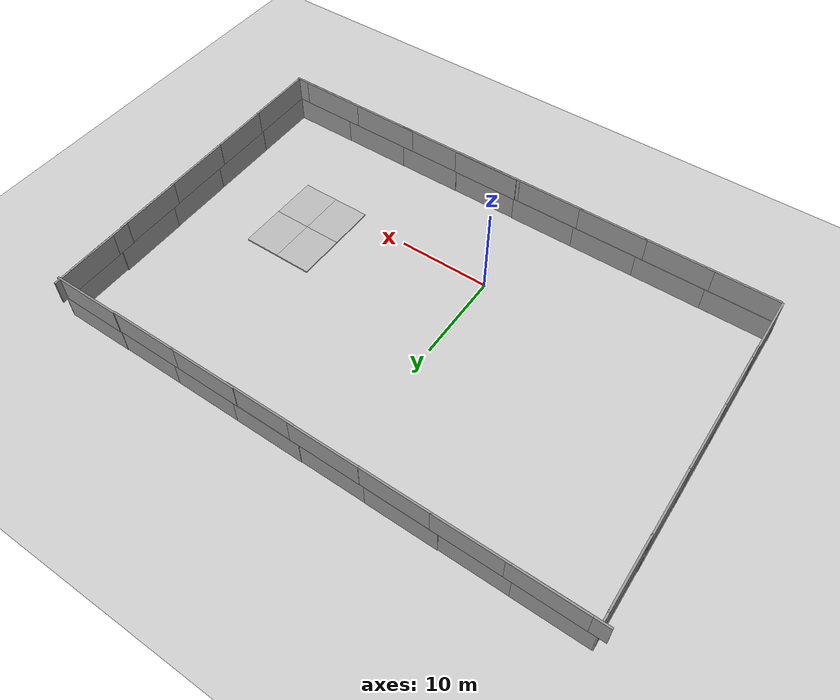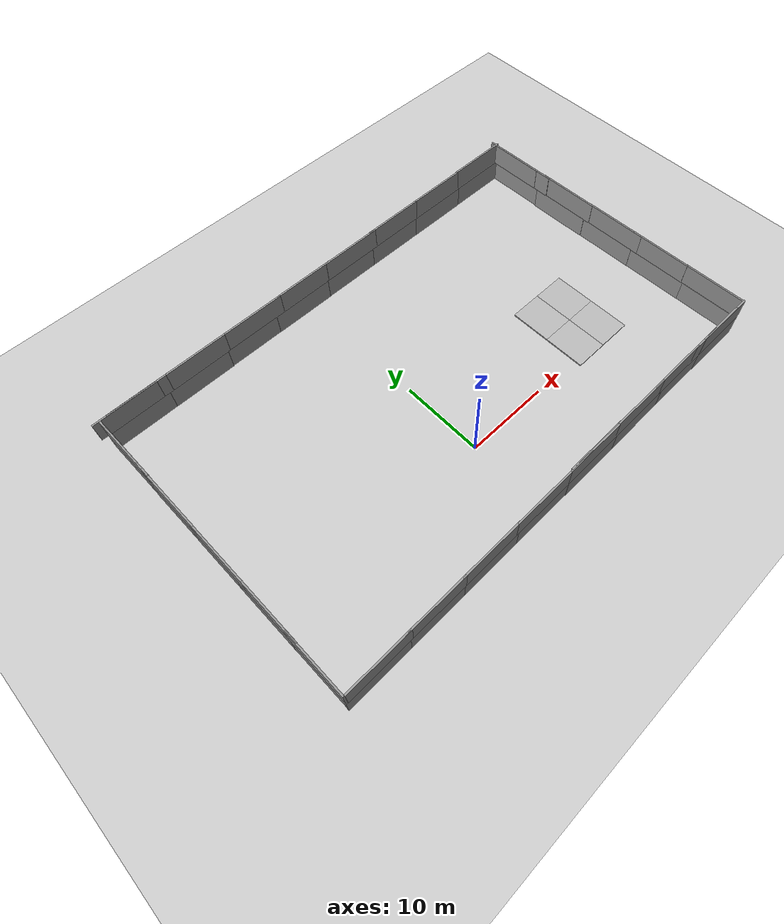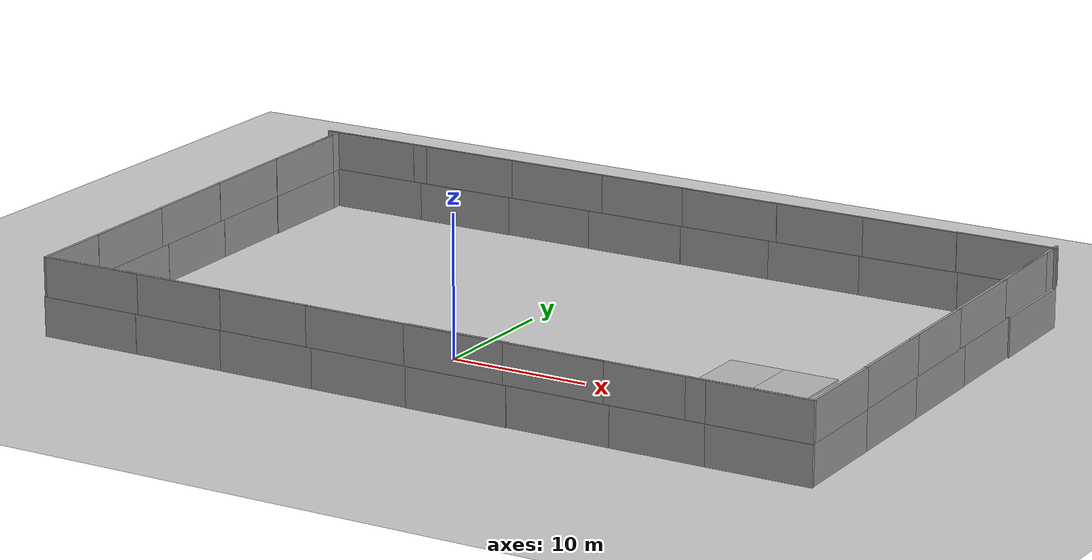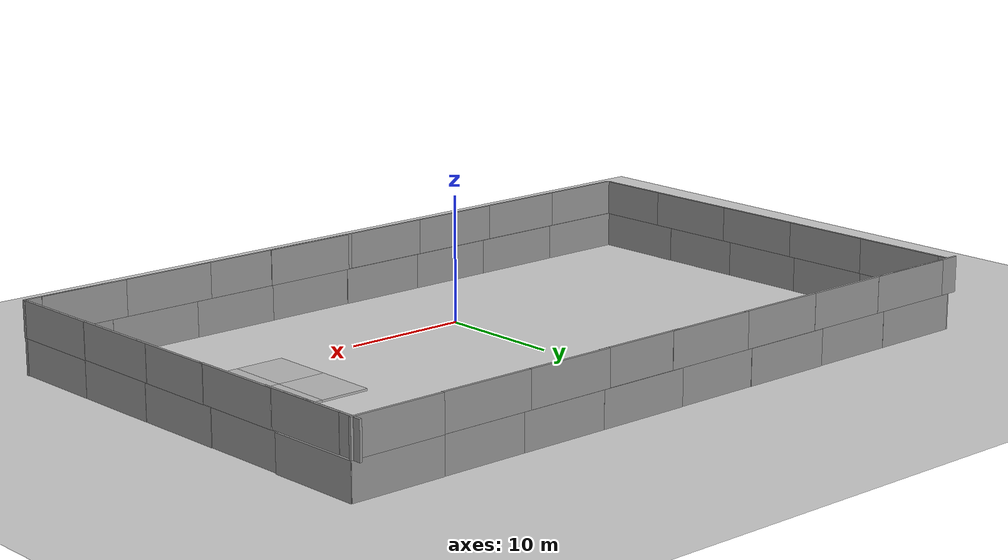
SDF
<sdf version="1.6">
 <world name="default">
  <light name="sun" type="directional">
   <pose>0 0 10 0 -0 0</pose>
   <diffuse>0.8 0.8 0.8 1</diffuse>
   <specular>0.2 0.2 0.2 1</specular>
   <attenuation>
    <range>1000</range>
    <constant>0.9</constant>
    <linear>0.01</linear>
    <quadratic>0.001</quadratic>
   </attenuation>
   <direction>-0.5 0.1 -0.9</direction>
  </light>
  <model name="ground_plane">
   <static>1</static>
   <link name="link">
    <collision name="collision">
     <geometry><plane><normal>0 0 1</normal><size>100 100</size></plane></geometry>
     <surface>
      <contact><collide_bitmask>65535</collide_bitmask></contact>
      <friction><ode><mu>100</mu><mu2>50</mu2></ode></friction>
     </surface>
    </collision>
    <visual name="visual">
     <cast_shadows>0</cast_shadows>
     <geometry><plane><normal>0 0 1</normal><size>100 100</size></plane></geometry>
     <material>
      <script><uri>file://media/materials/scripts/gazebo.material</uri><name>Gazebo/Grey</name></script>
     </material>
    </visual>
   </link>
  </model>
  <gravity>0 0 -9.8</gravity>
  <magnetic_field>6e-06 2.3e-05 -4.2e-05</magnetic_field>
  <atmosphere type="adiabatic"/>
  <physics name="default_physics" default="0" type="ode">
   <max_step_size>0.001</max_step_size>
   <real_time_factor>1</real_time_factor>
   <real_time_update_rate>1000</real_time_update_rate>
  </physics>
  <scene><ambient>0.4 0.4 0.4 1</ambient><background>0.7 0.7 0.7 1</background><shadows>1</shadows></scene>
  <audio><device>default</device></audio>
  <spherical_coordinates>
   <surface_model>EARTH_WGS84</surface_model>
   <latitude_deg>0</latitude_deg>
   <longitude_deg>0</longitude_deg>
   <elevation>0</elevation>
   <heading_deg>0</heading_deg>
  </spherical_coordinates>
  <model name="grey_wall">
   <static>1</static>
   <link name="link">
    <pose>0 0 1.4 0 -0 0</pose>
    <collision name="collision"><geometry><box><size>7.5 0.2 2.8</size></box></geometry></collision>
    <visual name="visual">
     <cast_shadows>0</cast_shadows>
     <geometry><box><size>7.5 0.2 2.8</size></box></geometry>
     <material>
      <script>
       <uri>model://grey_wall/materials/scripts</uri>
       <uri>model://grey_wall/materials/textures</uri>
       <name>vrc/grey_wall</name>
      </script>
     </material>
    </visual>
   </link>
   <pose>6.33138 -9.94059 0 0 -0 0</pose>
  </model>
  <model name="grey_wall_clone">
   <static>1</static>
   <link name="link">
    <pose>0 0 1.4 0 -0 0</pose>
    <collision name="collision"><geometry><box><size>7.5 0.2 2.8</size></box></geometry></collision>
    <visual name="visual">
     <cast_shadows>0</cast_shadows>
     <geometry><box><size>7.5 0.2 2.8</size></box></geometry>
     <material>
      <script>
       <uri>model://grey_wall/materials/scripts</uri>
       <uri>model://grey_wall/materials/textures</uri>
       <name>vrc/grey_wall</name>
      </script>
     </material>
    </visual>
   </link>
   <pose>-0.930477 -9.89295 0 0 -0 0</pose>
  </model>
  <model name="grey_wall_clone_0">
   <static>1</static>
   <link name="link">
    <pose>0 0 1.4 0 -0 0</pose>
    <collision name="collision"><geometry><box><size>7.5 0.2 2.8</size></box></geometry></collision>
    <visual name="visual">
     <cast_shadows>0</cast_shadows>
     <geometry><box><size>7.5 0.2 2.8</size></box></geometry>
     <material>
      <script>
       <uri>model://grey_wall/materials/scripts</uri>
       <uri>model://grey_wall/materials/textures</uri>
       <name>vrc/grey_wall</name>
      </script>
     </material>
    </visual>
   </link>
   <pose>-8.11293 -9.88561 0 0 -0 0</pose>
  </model>
  <model name="grey_wall_clone_1">
   <static>1</static>
   <link name="link">
    <pose>0 0 1.4 0 -0 0</pose>
    <collision name="collision"><geometry><box><size>7.5 0.2 2.8</size></box></geometry></collision>
    <visual name="visual">
     <cast_shadows>0</cast_shadows>
     <geometry><box><size>7.5 0.2 2.8</size></box></geometry>
     <material>
      <script>
       <uri>model://grey_wall/materials/scripts</uri>
       <uri>model://grey_wall/materials/textures</uri>
       <name>vrc/grey_wall</name>
      </script>
     </material>
    </visual>
   </link>
   <pose>-15.1967 -9.87373 0 0 -0 0</pose>
  </model>
  <model name="grey_wall_clone_2">
   <static>1</static>
   <link name="link">
    <pose>0 0 1.4 0 -0 0</pose>
    <collision name="collision"><geometry><box><size>7.5 0.2 2.8</size></box></geometry></collision>
    <visual name="visual">
     <cast_shadows>0</cast_shadows>
     <geometry><box><size>7.5 0.2 2.8</size></box></geometry>
     <material>
      <script>
       <uri>model://grey_wall/materials/scripts</uri>
       <uri>model://grey_wall/materials/textures</uri>
       <name>vrc/grey_wall</name>
      </script>
     </material>
    </visual>
   </link>
   <pose>-22.4069 -9.88614 0 0 -0 0</pose>
  </model>
  <model name="grey_wall_clone_2_clone">
   <static>1</static>
   <link name="link">
    <pose>0 0 1.4 0 -0 0</pose>
    <collision name="collision"><geometry><box><size>7.5 0.2 2.8</size></box></geometry></collision>
    <visual name="visual">
     <cast_shadows>0</cast_shadows>
     <geometry><box><size>7.5 0.2 2.8</size></box></geometry>
     <material>
      <script>
       <uri>model://grey_wall/materials/scripts</uri>
       <uri>model://grey_wall/materials/textures</uri>
       <name>vrc/grey_wall</name>
      </script>
     </material>
    </visual>
   </link>
   <pose>-26.088 -6.17554 0 0 -0 1.58718</pose>
  </model>
  <model name="grey_wall_clone_2_clone_clone">
   <static>1</static>
   <link name="link">
    <pose>0 0 1.4 0 -0 0</pose>
    <collision name="collision"><geometry><box><size>7.5 0.2 2.8</size></box></geometry></collision>
    <visual name="visual">
     <cast_shadows>0</cast_shadows>
     <geometry><box><size>7.5 0.2 2.8</size></box></geometry>
     <material>
      <script>
       <uri>model://grey_wall/materials/scripts</uri>
       <uri>model://grey_wall/materials/textures</uri>
       <name>vrc/grey_wall</name>
      </script>
     </material>
    </visual>
   </link>
   <pose>-26.2186 0.980149 0 0 -0 1.58718</pose>
  </model>
  <model name="grey_wall_clone_2_clone_clone_0">
   <static>1</static>
   <link name="link">
    <pose>0 0 1.4 0 -0 0</pose>
    <collision name="collision"><geometry><box><size>7.5 0.2 2.8</size></box></geometry></collision>
    <visual name="visual">
     <cast_shadows>0</cast_shadows>
     <geometry><box><size>7.5 0.2 2.8</size></box></geometry>
     <material>
      <script>
       <uri>model://grey_wall/materials/scripts</uri>
       <uri>model://grey_wall/materials/textures</uri>
       <name>vrc/grey_wall</name>
      </script>
     </material>
    </visual>
   </link>
   <pose>-26.3301 8.00722 0 0 -0 1.58718</pose>
  </model>
  <model name="grey_wall_clone_2_clone_clone_1">
   <static>1</static>
   <link name="link">
    <pose>0 0 1.4 0 -0 0</pose>
    <collision name="collision"><geometry><box><size>7.5 0.2 2.8</size></box></geometry></collision>
    <visual name="visual">
     <cast_shadows>0</cast_shadows>
     <geometry><box><size>7.5 0.2 2.8</size></box></geometry>
     <material>
      <script>
       <uri>model://grey_wall/materials/scripts</uri>
       <uri>model://grey_wall/materials/textures</uri>
       <name>vrc/grey_wall</name>
      </script>
     </material>
    </visual>
   </link>
   <pose>-26.4327 14.9335 0 0 -0 1.58718</pose>
  </model>
  <model name="grey_wall_clone_2_clone_clone_2">
   <static>1</static>
   <link name="link">
    <pose>0 0 1.4 0 -0 0</pose>
    <collision name="collision"><geometry><box><size>7.5 0.2 2.8</size></box></geometry></collision>
    <visual name="visual">
     <cast_shadows>0</cast_shadows>
     <geometry><box><size>7.5 0.2 2.8</size></box></geometry>
     <material>
      <script>
       <uri>model://grey_wall/materials/scripts</uri>
       <uri>model://grey_wall/materials/textures</uri>
       <name>vrc/grey_wall</name>
      </script>
     </material>
    </visual>
   </link>
   <pose>-26.4972 21.7148 0 0 -0 1.58718</pose>
  </model>
  <model name="grey_wall_clone_2_clone_clone_2_clone">
   <static>1</static>
   <link name="link">
    <pose>0 0 1.4 0 -0 0</pose>
    <collision name="collision"><geometry><box><size>7.5 0.2 2.8</size></box></geometry></collision>
    <visual name="visual">
     <cast_shadows>0</cast_shadows>
     <geometry><box><size>7.5 0.2 2.8</size></box></geometry>
     <material>
      <script>
       <uri>model://grey_wall/materials/scripts</uri>
       <uri>model://grey_wall/materials/textures</uri>
       <name>vrc/grey_wall</name>
      </script>
     </material>
    </visual>
   </link>
   <pose>-26.4889 21.6711 2.77944 0 -0 1.58718</pose>
  </model>
  <model name="grey_wall_clone_2_clone_clone_2_clone_clone">
   <static>1</static>
   <link name="link">
    <pose>0 0 1.4 0 -0 0</pose>
    <collision name="collision"><geometry><box><size>7.5 0.2 2.8</size></box></geometry></collision>
    <visual name="visual">
     <cast_shadows>0</cast_shadows>
     <geometry><box><size>7.5 0.2 2.8</size></box></geometry>
     <material>
      <script>
       <uri>model://grey_wall/materials/scripts</uri>
       <uri>model://grey_wall/materials/textures</uri>
       <name>vrc/grey_wall</name>
      </script>
     </material>
    </visual>
   </link>
   <pose>-26.3963 14.4366 2.77944 0 -0 1.58718</pose>
  </model>
  <model name="grey_wall_clone_2_clone_clone_2_clone_clone_0">
   <static>1</static>
   <link name="link">
    <pose>0 0 1.4 0 -0 0</pose>
    <collision name="collision"><geometry><box><size>7.5 0.2 2.8</size></box></geometry></collision>
    <visual name="visual">
     <cast_shadows>0</cast_shadows>
     <geometry><box><size>7.5 0.2 2.8</size></box></geometry>
     <material>
      <script>
       <uri>model://grey_wall/materials/scripts</uri>
       <uri>model://grey_wall/materials/textures</uri>
       <name>vrc/grey_wall</name>
      </script>
     </material>
    </visual>
   </link>
   <pose>-26.2916 7.22216 2.77944 0 -0 1.58718</pose>
  </model>
  <model name="grey_wall_clone_2_clone_clone_2_clone_clone_1">
   <static>1</static>
   <link name="link">
    <pose>0 0 1.4 0 -0 0</pose>
    <collision name="collision"><geometry><box><size>7.5 0.2 2.8</size></box></geometry></collision>
    <visual name="visual">
     <cast_shadows>0</cast_shadows>
     <geometry><box><size>7.5 0.2 2.8</size></box></geometry>
     <material>
      <script>
       <uri>model://grey_wall/materials/scripts</uri>
       <uri>model://grey_wall/materials/textures</uri>
       <name>vrc/grey_wall</name>
      </script>
     </material>
    </visual>
   </link>
   <pose>-26.165 -0.241195 2.77944 0 -0 1.58718</pose>
  </model>
  <model name="grey_wall_clone_2_clone_clone_2_clone_clone_2">
   <static>1</static>
   <link name="link">
    <pose>0 0 1.4 0 -0 0</pose>
    <collision name="collision"><geometry><box><size>7.5 0.2 2.8</size></box></geometry></collision>
    <visual name="visual">
     <cast_shadows>0</cast_shadows>
     <geometry><box><size>7.5 0.2 2.8</size></box></geometry>
     <material>
      <script>
       <uri>model://grey_wall/materials/scripts</uri>
       <uri>model://grey_wall/materials/textures</uri>
       <name>vrc/grey_wall</name>
      </script>
     </material>
    </visual>
   </link>
   <pose>-26.0871 -6.20339 2.77944 0 -0 1.58718</pose>
  </model>
  <model name="grey_wall_clone_3">
   <static>1</static>
   <link name="link">
    <pose>0 0 1.4 0 -0 0</pose>
    <collision name="collision"><geometry><box><size>7.5 0.2 2.8</size></box></geometry></collision>
    <visual name="visual">
     <cast_shadows>0</cast_shadows>
     <geometry><box><size>7.5 0.2 2.8</size></box></geometry>
     <material>
      <script>
       <uri>model://grey_wall/materials/scripts</uri>
       <uri>model://grey_wall/materials/textures</uri>
       <name>vrc/grey_wall</name>
      </script>
     </material>
    </visual>
   </link>
   <pose>-22.1691 -9.92634 2.81311 0 -0 0</pose>
  </model>
  <model name="grey_wall_clone_3_clone">
   <static>1</static>
   <link name="link">
    <pose>0 0 1.4 0 -0 0</pose>
    <collision name="collision"><geometry><box><size>7.5 0.2 2.8</size></box></geometry></collision>
    <visual name="visual">
     <cast_shadows>0</cast_shadows>
     <geometry><box><size>7.5 0.2 2.8</size></box></geometry>
     <material>
      <script>
       <uri>model://grey_wall/materials/scripts</uri>
       <uri>model://grey_wall/materials/textures</uri>
       <name>vrc/grey_wall</name>
      </script>
     </material>
    </visual>
   </link>
   <pose>-15.5243 -9.92187 2.81311 0 -0 0</pose>
  </model>
  <model name="grey_wall_clone_3_clone_0">
   <static>1</static>
   <link name="link">
    <pose>0 0 1.4 0 -0 0</pose>
    <collision name="collision"><geometry><box><size>7.5 0.2 2.8</size></box></geometry></collision>
    <visual name="visual">
     <cast_shadows>0</cast_shadows>
     <geometry><box><size>7.5 0.2 2.8</size></box></geometry>
     <material>
      <script>
       <uri>model://grey_wall/materials/scripts</uri>
       <uri>model://grey_wall/materials/textures</uri>
       <name>vrc/grey_wall</name>
      </script>
     </material>
    </visual>
   </link>
   <pose>-8.42803 -9.91453 2.81311 0 -0 0</pose>
  </model>
  <model name="grey_wall_clone_3_clone_1">
   <static>1</static>
   <link name="link">
    <pose>0 0 1.4 0 -0 0</pose>
    <collision name="collision"><geometry><box><size>7.5 0.2 2.8</size></box></geometry></collision>
    <visual name="visual">
     <cast_shadows>0</cast_shadows>
     <geometry><box><size>7.5 0.2 2.8</size></box></geometry>
     <material>
      <script>
       <uri>model://grey_wall/materials/scripts</uri>
       <uri>model://grey_wall/materials/textures</uri>
       <name>vrc/grey_wall</name>
      </script>
     </material>
    </visual>
   </link>
   <pose>-1.28364 -9.93151 2.81311 0 -0 0</pose>
  </model>
  <model name="grey_wall_clone_3_clone_1_clone">
   <static>1</static>
   <link name="link">
    <pose>0 0 1.4 0 -0 0</pose>
    <collision name="collision"><geometry><box><size>7.5 0.2 2.8</size></box></geometry></collision>
    <visual name="visual">
     <cast_shadows>0</cast_shadows>
     <geometry><box><size>7.5 0.2 2.8</size></box></geometry>
     <material>
      <script>
       <uri>model://grey_wall/materials/scripts</uri>
       <uri>model://grey_wall/materials/textures</uri>
       <name>vrc/grey_wall</name>
      </script>
     </material>
    </visual>
   </link>
   <pose>6.08354 -9.92656 2.81311 0 -0 0</pose>
  </model>
  <model name="grey_wall_clone_3_clone_1_clone_0">
   <static>1</static>
   <link name="link">
    <pose>0 0 1.4 0 -0 0</pose>
    <collision name="collision"><geometry><box><size>7.5 0.2 2.8</size></box></geometry></collision>
    <visual name="visual">
     <cast_shadows>0</cast_shadows>
     <geometry><box><size>7.5 0.2 2.8</size></box></geometry>
     <material>
      <script>
       <uri>model://grey_wall/materials/scripts</uri>
       <uri>model://grey_wall/materials/textures</uri>
       <name>vrc/grey_wall</name>
      </script>
     </material>
    </visual>
   </link>
   <pose>6.45462 -9.84681 2.81311 0 -0 0</pose>
  </model>
  <model name="grey_wall_clone_4">
   <static>1</static>
   <link name="link">
    <pose>0 0 1.4 0 -0 0</pose>
    <collision name="collision"><geometry><box><size>7.5 0.2 2.8</size></box></geometry></collision>
    <visual name="visual">
     <cast_shadows>0</cast_shadows>
     <geometry><box><size>7.5 0.2 2.8</size></box></geometry>
     <material>
      <script>
       <uri>model://grey_wall/materials/scripts</uri>
       <uri>model://grey_wall/materials/textures</uri>
       <name>vrc/grey_wall</name>
      </script>
     </material>
    </visual>
   </link>
   <pose>13.8435 -9.91842 0 0 -0 0</pose>
  </model>
  <model name="grey_wall_clone_5">
   <static>1</static>
   <link name="link">
    <pose>0 0 1.4 0 -0 0</pose>
    <collision name="collision"><geometry><box><size>7.5 0.2 2.8</size></box></geometry></collision>
    <visual name="visual">
     <cast_shadows>0</cast_shadows>
     <geometry><box><size>7.5 0.2 2.8</size></box></geometry>
     <material>
      <script>
       <uri>model://grey_wall/materials/scripts</uri>
       <uri>model://grey_wall/materials/textures</uri>
       <name>vrc/grey_wall</name>
      </script>
     </material>
    </visual>
   </link>
   <pose>20.8684 -9.91738 0 0 -0 0</pose>
  </model>
  <model name="grey_wall_clone_6">
   <static>1</static>
   <link name="link">
    <pose>0 0 1.4 0 -0 0</pose>
    <collision name="collision"><geometry><box><size>7.5 0.2 2.8</size></box></geometry></collision>
    <visual name="visual">
     <cast_shadows>0</cast_shadows>
     <geometry><box><size>7.5 0.2 2.8</size></box></geometry>
     <material>
      <script>
       <uri>model://grey_wall/materials/scripts</uri>
       <uri>model://grey_wall/materials/textures</uri>
       <name>vrc/grey_wall</name>
      </script>
     </material>
    </visual>
   </link>
   <pose>28.1244 -9.92121 0 0 -0 0</pose>
  </model>
  <model name="grey_wall_clone_3_clone_1_clone_0_clone">
   <static>1</static>
   <link name="link">
    <pose>0 0 1.4 0 -0 0</pose>
    <collision name="collision"><geometry><box><size>7.5 0.2 2.8</size></box></geometry></collision>
    <visual name="visual">
     <cast_shadows>0</cast_shadows>
     <geometry><box><size>7.5 0.2 2.8</size></box></geometry>
     <material>
      <script>
       <uri>model://grey_wall/materials/scripts</uri>
       <uri>model://grey_wall/materials/textures</uri>
       <name>vrc/grey_wall</name>
      </script>
     </material>
    </visual>
   </link>
   <pose>13.4346 -9.89838 2.81311 0 -0 0</pose>
  </model>
  <model name="grey_wall_clone_3_clone_1_clone_0_clone_0">
   <static>1</static>
   <link name="link">
    <pose>0 0 1.4 0 -0 0</pose>
    <collision name="collision"><geometry><box><size>7.5 0.2 2.8</size></box></geometry></collision>
    <visual name="visual">
     <cast_shadows>0</cast_shadows>
     <geometry><box><size>7.5 0.2 2.8</size></box></geometry>
     <material>
      <script>
       <uri>model://grey_wall/materials/scripts</uri>
       <uri>model://grey_wall/materials/textures</uri>
       <name>vrc/grey_wall</name>
      </script>
     </material>
    </visual>
   </link>
   <pose>19.5935 -9.8919 2.81311 0 -0 0</pose>
  </model>
  <model name="grey_wall_clone_3_clone_1_clone_0_clone_1">
   <static>1</static>
   <link name="link">
    <pose>0 0 1.4 0 -0 0</pose>
    <collision name="collision"><geometry><box><size>7.5 0.2 2.8</size></box></geometry></collision>
    <visual name="visual">
     <cast_shadows>0</cast_shadows>
     <geometry><box><size>7.5 0.2 2.8</size></box></geometry>
     <material>
      <script>
       <uri>model://grey_wall/materials/scripts</uri>
       <uri>model://grey_wall/materials/textures</uri>
       <name>vrc/grey_wall</name>
      </script>
     </material>
    </visual>
   </link>
   <pose>26.7299 -9.89311 2.81311 0 -0 0</pose>
  </model>
  <model name="grey_wall_clone_3_clone_1_clone_0_clone_2">
   <static>1</static>
   <link name="link">
    <pose>0 0 1.4 0 -0 0</pose>
    <collision name="collision"><geometry><box><size>7.5 0.2 2.8</size></box></geometry></collision>
    <visual name="visual">
     <cast_shadows>0</cast_shadows>
     <geometry><box><size>7.5 0.2 2.8</size></box></geometry>
     <material>
      <script>
       <uri>model://grey_wall/materials/scripts</uri>
       <uri>model://grey_wall/materials/textures</uri>
       <name>vrc/grey_wall</name>
      </script>
     </material>
    </visual>
   </link>
   <pose>28.177 -9.92404 2.81311 0 -0 0</pose>
  </model>
  <model name="grey_wall_clone_2_clone_clone_2_clone_0">
   <static>1</static>
   <link name="link">
    <pose>0 0 1.4 0 -0 0</pose>
    <collision name="collision"><geometry><box><size>7.5 0.2 2.8</size></box></geometry></collision>
    <visual name="visual">
     <cast_shadows>0</cast_shadows>
     <geometry><box><size>7.5 0.2 2.8</size></box></geometry>
     <material>
      <script>
       <uri>model://grey_wall/materials/scripts</uri>
       <uri>model://grey_wall/materials/textures</uri>
       <name>vrc/grey_wall</name>
      </script>
     </material>
    </visual>
   </link>
   <pose>31.6783 -6.2246 0 0 -0 1.58718</pose>
  </model>
  <model name="grey_wall_clone_2_clone_clone_2_clone_1">
   <static>1</static>
   <link name="link">
    <pose>0 0 1.4 0 -0 0</pose>
    <collision name="collision"><geometry><box><size>7.5 0.2 2.8</size></box></geometry></collision>
    <visual name="visual">
     <cast_shadows>0</cast_shadows>
     <geometry><box><size>7.5 0.2 2.8</size></box></geometry>
     <material>
      <script>
       <uri>model://grey_wall/materials/scripts</uri>
       <uri>model://grey_wall/materials/textures</uri>
       <name>vrc/grey_wall</name>
      </script>
     </material>
    </visual>
   </link>
   <pose>31.5555 0.939964 0 0 -0 1.58718</pose>
  </model>
  <model name="grey_wall_clone_2_clone_clone_2_clone_2">
   <static>1</static>
   <link name="link">
    <pose>0 0 1.4 0 -0 0</pose>
    <collision name="collision"><geometry><box><size>7.5 0.2 2.8</size></box></geometry></collision>
    <visual name="visual">
     <cast_shadows>0</cast_shadows>
     <geometry><box><size>7.5 0.2 2.8</size></box></geometry>
     <material>
      <script>
       <uri>model://grey_wall/materials/scripts</uri>
       <uri>model://grey_wall/materials/textures</uri>
       <name>vrc/grey_wall</name>
      </script>
     </material>
    </visual>
   </link>
   <pose>31.4139 8.29098 0 0 -0 1.58718</pose>
  </model>
  <model name="grey_wall_clone_2_clone_clone_2_clone_3">
   <static>1</static>
   <link name="link">
    <pose>0 0 1.4 0 -0 0</pose>
    <collision name="collision"><geometry><box><size>7.5 0.2 2.8</size></box></geometry></collision>
    <visual name="visual">
     <cast_shadows>0</cast_shadows>
     <geometry><box><size>7.5 0.2 2.8</size></box></geometry>
     <material>
      <script>
       <uri>model://grey_wall/materials/scripts</uri>
       <uri>model://grey_wall/materials/textures</uri>
       <name>vrc/grey_wall</name>
      </script>
     </material>
    </visual>
   </link>
   <pose>31.2528 15.4557 0 0 -0 1.58718</pose>
  </model>
  <model name="grey_wall_clone_2_clone_clone_2_clone_4">
   <static>1</static>
   <link name="link">
    <pose>0 0 1.4 0 -0 0</pose>
    <collision name="collision"><geometry><box><size>7.5 0.2 2.8</size></box></geometry></collision>
    <visual name="visual">
     <cast_shadows>0</cast_shadows>
     <geometry><box><size>7.5 0.2 2.8</size></box></geometry>
     <material>
      <script>
       <uri>model://grey_wall/materials/scripts</uri>
       <uri>model://grey_wall/materials/textures</uri>
       <name>vrc/grey_wall</name>
      </script>
     </material>
    </visual>
   </link>
   <pose>31.2519 22.7221 0 0 -0 1.58718</pose>
  </model>
  <model name="grey_wall_clone_6_clone">
   <static>1</static>
   <link name="link">
    <pose>0 0 1.4 0 -0 0</pose>
    <collision name="collision"><geometry><box><size>7.5 0.2 2.8</size></box></geometry></collision>
    <visual name="visual">
     <cast_shadows>0</cast_shadows>
     <geometry><box><size>7.5 0.2 2.8</size></box></geometry>
     <material>
      <script>
       <uri>model://grey_wall/materials/scripts</uri>
       <uri>model://grey_wall/materials/textures</uri>
       <name>vrc/grey_wall</name>
      </script>
     </material>
    </visual>
   </link>
   <pose>27.4831 26.3853 0 0 -0 0</pose>
  </model>
  <model name="grey_wall_clone_6_clone_0">
   <static>1</static>
   <link name="link">
    <pose>0 0 1.4 0 -0 0</pose>
    <collision name="collision"><geometry><box><size>7.5 0.2 2.8</size></box></geometry></collision>
    <visual name="visual">
     <cast_shadows>0</cast_shadows>
     <geometry><box><size>7.5 0.2 2.8</size></box></geometry>
     <material>
      <script>
       <uri>model://grey_wall/materials/scripts</uri>
       <uri>model://grey_wall/materials/textures</uri>
       <name>vrc/grey_wall</name>
      </script>
     </material>
    </visual>
   </link>
   <pose>20.2882 26.352 0 0 -0 0</pose>
  </model>
  <model name="grey_wall_clone_6_clone_1">
   <static>1</static>
   <link name="link">
    <pose>0 0 1.4 0 -0 0</pose>
    <collision name="collision"><geometry><box><size>7.5 0.2 2.8</size></box></geometry></collision>
    <visual name="visual">
     <cast_shadows>0</cast_shadows>
     <geometry><box><size>7.5 0.2 2.8</size></box></geometry>
     <material>
      <script>
       <uri>model://grey_wall/materials/scripts</uri>
       <uri>model://grey_wall/materials/textures</uri>
       <name>vrc/grey_wall</name>
      </script>
     </material>
    </visual>
   </link>
   <pose>13.177 26.3611 0 0 -0 0</pose>
  </model>
  <model name="grey_wall_clone_6_clone_2">
   <static>1</static>
   <link name="link">
    <pose>0 0 1.4 0 -0 0</pose>
    <collision name="collision"><geometry><box><size>7.5 0.2 2.8</size></box></geometry></collision>
    <visual name="visual">
     <cast_shadows>0</cast_shadows>
     <geometry><box><size>7.5 0.2 2.8</size></box></geometry>
     <material>
      <script>
       <uri>model://grey_wall/materials/scripts</uri>
       <uri>model://grey_wall/materials/textures</uri>
       <name>vrc/grey_wall</name>
      </script>
     </material>
    </visual>
   </link>
   <pose>6.00972 26.3633 0 0 -0 0</pose>
  </model>
  <model name="grey_wall_clone_6_clone_3">
   <static>1</static>
   <link name="link">
    <pose>0 0 1.4 0 -0 0</pose>
    <collision name="collision"><geometry><box><size>7.5 0.2 2.8</size></box></geometry></collision>
    <visual name="visual">
     <cast_shadows>0</cast_shadows>
     <geometry><box><size>7.5 0.2 2.8</size></box></geometry>
     <material>
      <script>
       <uri>model://grey_wall/materials/scripts</uri>
       <uri>model://grey_wall/materials/textures</uri>
       <name>vrc/grey_wall</name>
      </script>
     </material>
    </visual>
   </link>
   <pose>-1.35612 26.3275 0 0 -0 0</pose>
  </model>
  <model name="grey_wall_clone_6_clone_4">
   <static>1</static>
   <link name="link">
    <pose>0 0 1.4 0 -0 0</pose>
    <collision name="collision"><geometry><box><size>7.5 0.2 2.8</size></box></geometry></collision>
    <visual name="visual">
     <cast_shadows>0</cast_shadows>
     <geometry><box><size>7.5 0.2 2.8</size></box></geometry>
     <material>
      <script>
       <uri>model://grey_wall/materials/scripts</uri>
       <uri>model://grey_wall/materials/textures</uri>
       <name>vrc/grey_wall</name>
      </script>
     </material>
    </visual>
   </link>
   <pose>-8.43359 26.3507 0 0 -0 0</pose>
  </model>
  <model name="grey_wall_clone_6_clone_5">
   <static>1</static>
   <link name="link">
    <pose>0 0 1.4 0 -0 0</pose>
    <collision name="collision"><geometry><box><size>7.5 0.2 2.8</size></box></geometry></collision>
    <visual name="visual">
     <cast_shadows>0</cast_shadows>
     <geometry><box><size>7.5 0.2 2.8</size></box></geometry>
     <material>
      <script>
       <uri>model://grey_wall/materials/scripts</uri>
       <uri>model://grey_wall/materials/textures</uri>
       <name>vrc/grey_wall</name>
      </script>
     </material>
    </visual>
   </link>
   <pose>-15.5457 26.3003 0 0 -0 0</pose>
  </model>
  <model name="grey_wall_clone_6_clone_6">
   <static>1</static>
   <link name="link">
    <pose>0 0 1.4 0 -0 0</pose>
    <collision name="collision"><geometry><box><size>7.5 0.2 2.8</size></box></geometry></collision>
    <visual name="visual">
     <cast_shadows>0</cast_shadows>
     <geometry><box><size>7.5 0.2 2.8</size></box></geometry>
     <material>
      <script>
       <uri>model://grey_wall/materials/scripts</uri>
       <uri>model://grey_wall/materials/textures</uri>
       <name>vrc/grey_wall</name>
      </script>
     </material>
    </visual>
   </link>
   <pose>-22.8245 26.3093 0 0 -0 0</pose>
  </model>
  <model name="grey_wall_clone_2_clone_clone_2_clone_5">
   <static>1</static>
   <link name="link">
    <pose>0 0 1.4 0 -0 0</pose>
    <collision name="collision"><geometry><box><size>7.5 0.2 2.8</size></box></geometry></collision>
    <visual name="visual">
     <cast_shadows>0</cast_shadows>
     <geometry><box><size>7.5 0.2 2.8</size></box></geometry>
     <material>
      <script>
       <uri>model://grey_wall/materials/scripts</uri>
       <uri>model://grey_wall/materials/textures</uri>
       <name>vrc/grey_wall</name>
      </script>
     </material>
    </visual>
   </link>
   <pose>-26.5325 22.641 0 0 -0 1.58718</pose>
  </model>
  <model name="grey_wall_clone_2_clone_clone_2_clone_clone_3">
   <static>1</static>
   <link name="link">
    <pose>0 0 1.4 0 -0 0</pose>
    <collision name="collision"><geometry><box><size>7.5 0.2 2.8</size></box></geometry></collision>
    <visual name="visual">
     <cast_shadows>0</cast_shadows>
     <geometry><box><size>7.5 0.2 2.8</size></box></geometry>
     <material>
      <script>
       <uri>model://grey_wall/materials/scripts</uri>
       <uri>model://grey_wall/materials/textures</uri>
       <name>vrc/grey_wall</name>
      </script>
     </material>
    </visual>
   </link>
   <pose>-26.5163 22.6718 2.77944 0 -0 1.58718</pose>
  </model>
  <model name="grey_wall_clone_3_clone_1_clone_0_clone_2_clone">
   <static>1</static>
   <link name="link">
    <pose>0 0 1.4 0 -0 0</pose>
    <collision name="collision"><geometry><box><size>7.5 0.2 2.8</size></box></geometry></collision>
    <visual name="visual">
     <cast_shadows>0</cast_shadows>
     <geometry><box><size>7.5 0.2 2.8</size></box></geometry>
     <material>
      <script>
       <uri>model://grey_wall/materials/scripts</uri>
       <uri>model://grey_wall/materials/textures</uri>
       <name>vrc/grey_wall</name>
      </script>
     </material>
    </visual>
   </link>
   <pose>27.5408 26.4442 2.81311 0 -0 0</pose>
  </model>
  <model name="grey_wall_clone_3_clone_1_clone_0_clone_2_clone_clone">
   <static>1</static>
   <link name="link">
    <pose>0 0 1.4 0 -0 0</pose>
    <collision name="collision"><geometry><box><size>7.5 0.2 2.8</size></box></geometry></collision>
    <visual name="visual">
     <cast_shadows>0</cast_shadows>
     <geometry><box><size>7.5 0.2 2.8</size></box></geometry>
     <material>
      <script>
       <uri>model://grey_wall/materials/scripts</uri>
       <uri>model://grey_wall/materials/textures</uri>
       <name>vrc/grey_wall</name>
      </script>
     </material>
    </visual>
   </link>
   <pose>20.1387 26.3752 2.81311 0 -0 0</pose>
  </model>
  <model name="grey_wall_clone_3_clone_1_clone_0_clone_2_clone_clone_0">
   <static>1</static>
   <link name="link">
    <pose>0 0 1.4 0 -0 0</pose>
    <collision name="collision"><geometry><box><size>7.5 0.2 2.8</size></box></geometry></collision>
    <visual name="visual">
     <cast_shadows>0</cast_shadows>
     <geometry><box><size>7.5 0.2 2.8</size></box></geometry>
     <material>
      <script>
       <uri>model://grey_wall/materials/scripts</uri>
       <uri>model://grey_wall/materials/textures</uri>
       <name>vrc/grey_wall</name>
      </script>
     </material>
    </visual>
   </link>
   <pose>13.0028 26.3727 2.81311 0 -0 0</pose>
  </model>
  <model name="grey_wall_clone_3_clone_1_clone_0_clone_2_clone_clone_1">
   <static>1</static>
   <link name="link">
    <pose>0 0 1.4 0 -0 0</pose>
    <collision name="collision"><geometry><box><size>7.5 0.2 2.8</size></box></geometry></collision>
    <visual name="visual">
     <cast_shadows>0</cast_shadows>
     <geometry><box><size>7.5 0.2 2.8</size></box></geometry>
     <material>
      <script>
       <uri>model://grey_wall/materials/scripts</uri>
       <uri>model://grey_wall/materials/textures</uri>
       <name>vrc/grey_wall</name>
      </script>
     </material>
    </visual>
   </link>
   <pose>6.30623 26.327 2.81311 0 -0 0</pose>
  </model>
  <model name="grey_wall_clone_3_clone_1_clone_0_clone_2_clone_clone_2">
   <static>1</static>
   <link name="link">
    <pose>0 0 1.4 0 -0 0</pose>
    <collision name="collision"><geometry><box><size>7.5 0.2 2.8</size></box></geometry></collision>
    <visual name="visual">
     <cast_shadows>0</cast_shadows>
     <geometry><box><size>7.5 0.2 2.8</size></box></geometry>
     <material>
      <script>
       <uri>model://grey_wall/materials/scripts</uri>
       <uri>model://grey_wall/materials/textures</uri>
       <name>vrc/grey_wall</name>
      </script>
     </material>
    </visual>
   </link>
   <pose>-0.508454 26.3526 2.81311 0 -0 0</pose>
  </model>
  <model name="grey_wall_clone_3_clone_1_clone_0_clone_2_clone_clone_3">
   <static>1</static>
   <link name="link">
    <pose>0 0 1.4 0 -0 0</pose>
    <collision name="collision"><geometry><box><size>7.5 0.2 2.8</size></box></geometry></collision>
    <visual name="visual">
     <cast_shadows>0</cast_shadows>
     <geometry><box><size>7.5 0.2 2.8</size></box></geometry>
     <material>
      <script>
       <uri>model://grey_wall/materials/scripts</uri>
       <uri>model://grey_wall/materials/textures</uri>
       <name>vrc/grey_wall</name>
      </script>
     </material>
    </visual>
   </link>
   <pose>-7.7412 26.3336 2.81311 0 -0 0</pose>
  </model>
  <model name="grey_wall_clone_3_clone_1_clone_0_clone_2_clone_clone_4">
   <static>1</static>
   <link name="link">
    <pose>0 0 1.4 0 -0 0</pose>
    <collision name="collision"><geometry><box><size>7.5 0.2 2.8</size></box></geometry></collision>
    <visual name="visual">
     <cast_shadows>0</cast_shadows>
     <geometry><box><size>7.5 0.2 2.8</size></box></geometry>
     <material>
      <script>
       <uri>model://grey_wall/materials/scripts</uri>
       <uri>model://grey_wall/materials/textures</uri>
       <name>vrc/grey_wall</name>
      </script>
     </material>
    </visual>
   </link>
   <pose>-15.0754 26.3367 2.81311 0 -0 0</pose>
  </model>
  <model name="grey_wall_clone_3_clone_1_clone_0_clone_2_clone_clone_5">
   <static>1</static>
   <link name="link">
    <pose>0 0 1.4 0 -0 0</pose>
    <collision name="collision"><geometry><box><size>7.5 0.2 2.8</size></box></geometry></collision>
    <visual name="visual">
     <cast_shadows>0</cast_shadows>
     <geometry><box><size>7.5 0.2 2.8</size></box></geometry>
     <material>
      <script>
       <uri>model://grey_wall/materials/scripts</uri>
       <uri>model://grey_wall/materials/textures</uri>
       <name>vrc/grey_wall</name>
      </script>
     </material>
    </visual>
   </link>
   <pose>-22.0598 26.3394 2.81311 0 -0 0</pose>
  </model>
  <model name="grey_wall_clone_3_clone_1_clone_0_clone_2_clone_clone_6">
   <static>1</static>
   <link name="link">
    <pose>0 0 1.4 0 -0 0</pose>
    <collision name="collision"><geometry><box><size>7.5 0.2 2.8</size></box></geometry></collision>
    <visual name="visual">
     <cast_shadows>0</cast_shadows>
     <geometry><box><size>7.5 0.2 2.8</size></box></geometry>
     <material>
      <script>
       <uri>model://grey_wall/materials/scripts</uri>
       <uri>model://grey_wall/materials/textures</uri>
       <name>vrc/grey_wall</name>
      </script>
     </material>
    </visual>
   </link>
   <pose>-23.6641 26.3272 2.81311 0 -0 0</pose>
  </model>
  <model name="grey_wall_clone_2_clone_clone_2_clone_clone_2_clone">
   <static>1</static>
   <link name="link">
    <pose>0 0 1.4 0 -0 0</pose>
    <collision name="collision"><geometry><box><size>7.5 0.2 2.8</size></box></geometry></collision>
    <visual name="visual">
     <cast_shadows>0</cast_shadows>
     <geometry><box><size>7.5 0.2 2.8</size></box></geometry>
     <material>
      <script>
       <uri>model://grey_wall/materials/scripts</uri>
       <uri>model://grey_wall/materials/textures</uri>
       <name>vrc/grey_wall</name>
      </script>
     </material>
    </visual>
   </link>
   <pose>31.7054 -6.20078 2.77944 0 -0 1.58718</pose>
  </model>
  <model name="grey_wall_clone_2_clone_clone_2_clone_clone_2_clone_clone">
   <static>1</static>
   <link name="link">
    <pose>0 0 1.4 0 -0 0</pose>
    <collision name="collision"><geometry><box><size>7.5 0.2 2.8</size></box></geometry></collision>
    <visual name="visual">
     <cast_shadows>0</cast_shadows>
     <geometry><box><size>7.5 0.2 2.8</size></box></geometry>
     <material>
      <script>
       <uri>model://grey_wall/materials/scripts</uri>
       <uri>model://grey_wall/materials/textures</uri>
       <name>vrc/grey_wall</name>
      </script>
     </material>
    </visual>
   </link>
   <pose>31.5488 1.1369 2.77944 0 -0 1.58718</pose>
  </model>
  <model name="grey_wall_clone_2_clone_clone_2_clone_clone_2_clone_clone_0">
   <static>1</static>
   <link name="link">
    <pose>0 0 1.4 0 -0 0</pose>
    <collision name="collision"><geometry><box><size>7.5 0.2 2.8</size></box></geometry></collision>
    <visual name="visual">
     <cast_shadows>0</cast_shadows>
     <geometry><box><size>7.5 0.2 2.8</size></box></geometry>
     <material>
      <script>
       <uri>model://grey_wall/materials/scripts</uri>
       <uri>model://grey_wall/materials/textures</uri>
       <name>vrc/grey_wall</name>
      </script>
     </material>
    </visual>
   </link>
   <pose>31.4274 7.49949 2.77944 0 -0 1.58718</pose>
  </model>
  <model name="grey_wall_clone_2_clone_clone_2_clone_clone_2_clone_clone_1">
   <static>1</static>
   <link name="link">
    <pose>0 0 1.4 0 -0 0</pose>
    <collision name="collision"><geometry><box><size>7.5 0.2 2.8</size></box></geometry></collision>
    <visual name="visual">
     <cast_shadows>0</cast_shadows>
     <geometry><box><size>7.5 0.2 2.8</size></box></geometry>
     <material>
      <script>
       <uri>model://grey_wall/materials/scripts</uri>
       <uri>model://grey_wall/materials/textures</uri>
       <name>vrc/grey_wall</name>
      </script>
     </material>
    </visual>
   </link>
   <pose>31.2678 14.6921 2.77944 0 -0 1.58718</pose>
  </model>
  <model name="grey_wall_clone_2_clone_clone_2_clone_clone_2_clone_clone_2">
   <static>1</static>
   <link name="link">
    <pose>0 0 1.4 0 -0 0</pose>
    <collision name="collision"><geometry><box><size>7.5 0.2 2.8</size></box></geometry></collision>
    <visual name="visual">
     <cast_shadows>0</cast_shadows>
     <geometry><box><size>7.5 0.2 2.8</size></box></geometry>
     <material>
      <script>
       <uri>model://grey_wall/materials/scripts</uri>
       <uri>model://grey_wall/materials/textures</uri>
       <name>vrc/grey_wall</name>
      </script>
     </material>
    </visual>
   </link>
   <pose>31.0949 21.4241 2.77944 0 -0 1.58718</pose>
  </model>
  <model name="grey_wall_clone_2_clone_clone_2_clone_clone_2_clone_clone_3">
   <static>1</static>
   <link name="link">
    <pose>0 0 1.4 0 -0 0</pose>
    <collision name="collision"><geometry><box><size>7.5 0.2 2.8</size></box></geometry></collision>
    <visual name="visual">
     <cast_shadows>0</cast_shadows>
     <geometry><box><size>7.5 0.2 2.8</size></box></geometry>
     <material>
      <script>
       <uri>model://grey_wall/materials/scripts</uri>
       <uri>model://grey_wall/materials/textures</uri>
       <name>vrc/grey_wall</name>
      </script>
     </material>
    </visual>
   </link>
   <pose>31.0384 23.3881 2.77944 0 -0 1.58718</pose>
  </model>
  <model name="mud_box">
   <static>1</static>
   <link name="link">
    <collision name="collision"><geometry><box><size>8 10 0.2</size></box></geometry></collision>
    <visual name="visual_1">
     <pose>-2 2.5 0 0 -0 0</pose>
     <cast_shadows>0</cast_shadows>
     <geometry><box><size>4 5 0.2</size></box></geometry>
     <material>
      <script>
       <uri>model://mud_box/materials/scripts</uri>
       <uri>model://mud_box/materials/textures</uri>
       <name>vrc/mud</name>
      </script>
     </material>
    </visual>
    <visual name="visual_2">
     <pose>2 2.5 0 0 -0 0</pose>
     <cast_shadows>0</cast_shadows>
     <geometry><box><size>4 5 0.2</size></box></geometry>
     <material>
      <script>
       <uri>model://mud_box/materials/scripts</uri>
       <uri>model://mud_box/materials/textures</uri>
       <name>vrc/mud</name>
      </script>
     </material>
    </visual>
    <visual name="visual_3">
     <pose>2 -2.5 0 0 -0 0</pose>
     <cast_shadows>0</cast_shadows>
     <geometry><box><size>4 5 0.2</size></box></geometry>
     <material>
      <script>
       <uri>model://mud_box/materials/scripts</uri>
       <uri>model://mud_box/materials/textures</uri>
       <name>vrc/mud</name>
      </script>
     </material>
    </visual>
    <visual name="visual_4">
     <pose>-2 -2.5 0 0 -0 0</pose>
     <cast_shadows>0</cast_shadows>
     <geometry><box><size>4 5 0.2</size></box></geometry>
     <material>
      <script>
       <uri>model://mud_box/materials/scripts</uri>
       <uri>model://mud_box/materials/textures</uri>
       <name>vrc/mud</name>
      </script>
     </material>
    </visual>
   </link>
   <pose>19.9293 3.95358 0 0 -0 0</pose>
  </model>
 </world>
</sdf>
